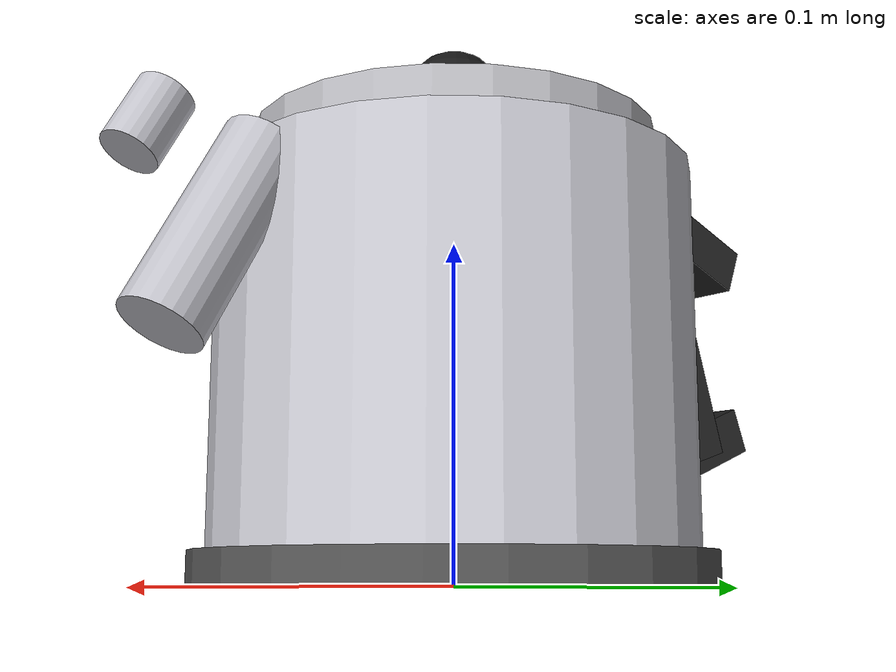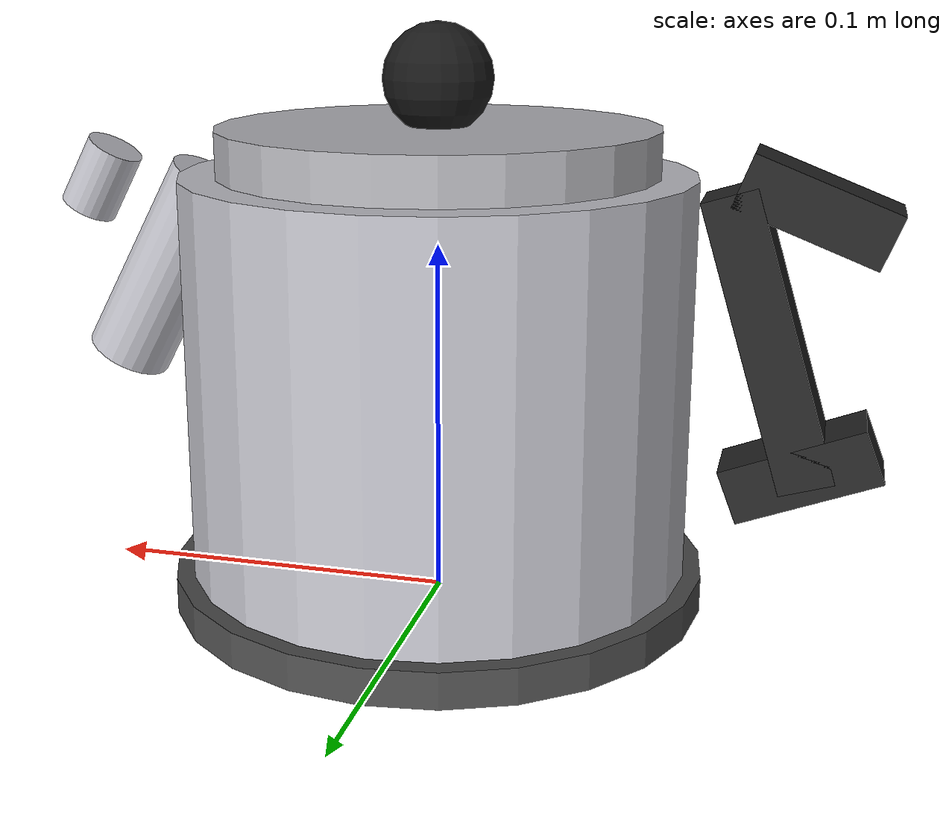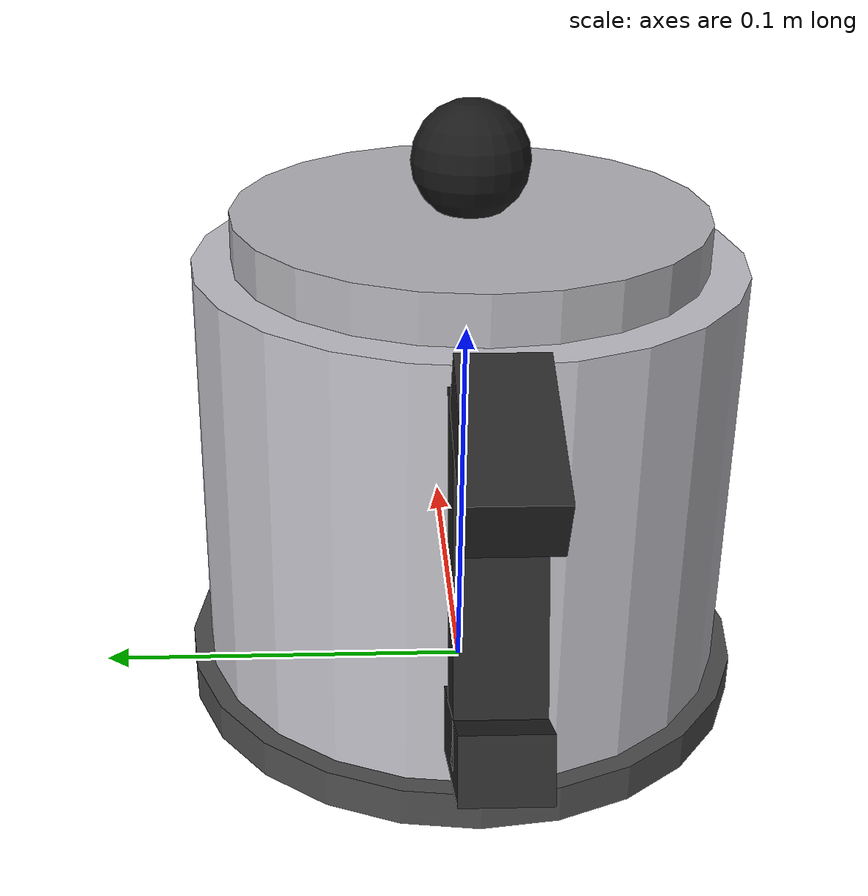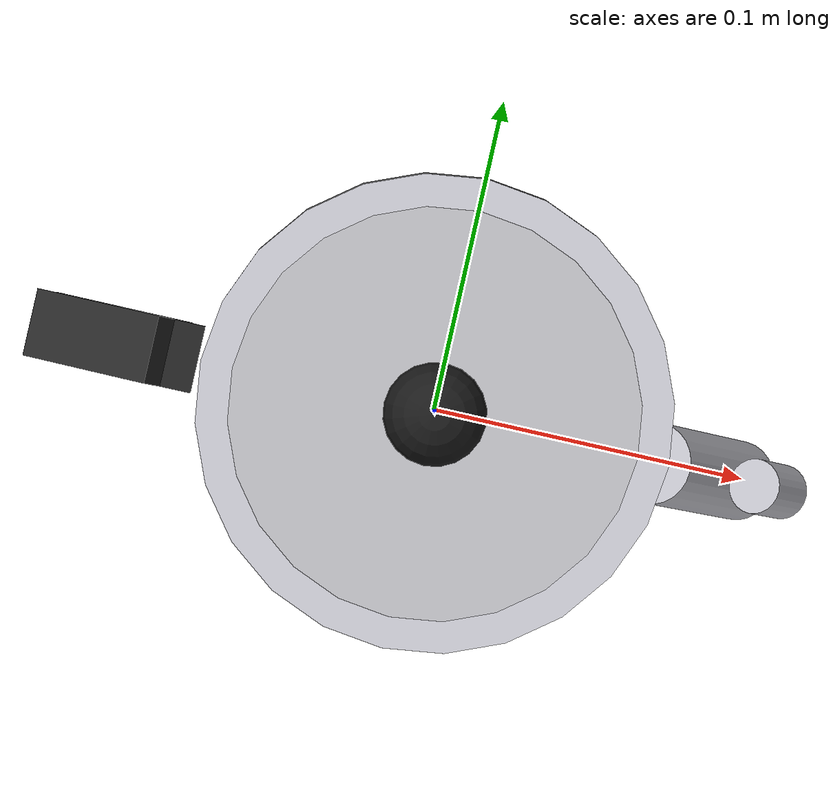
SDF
<?xml version="1.0" ?>
<sdf version="1.9">
  <model name="kettle">
    <static>false</static>

    <!-- Main kettle body -->
    <link name="body">
      <pose>0 0 0.06 0 0 0</pose>
      <inertial>
        <mass>0.5</mass>
        <pose>0 0 0 0 0 0</pose>
        <inertia>
          <ixx>0.002</ixx>
          <iyy>0.002</iyy>
          <izz>0.001</izz>
        </inertia>
      </inertial>

      <!-- Kettle body (main cylinder) -->
      <visual name="body_visual">
        <geometry>
          <cylinder>
            <radius>0.07</radius>
            <length>0.12</length>
          </cylinder>
        </geometry>
        <material>
          <ambient>0.75 0.75 0.78 1</ambient>
          <diffuse>0.75 0.75 0.78 1</diffuse>
          <specular>0.9 0.9 0.9 1</specular>
        </material>
      </visual>

      <!-- Kettle bottom (slightly wider) -->
      <visual name="bottom_visual">
        <pose>0 0 -0.055 0 0 0</pose>
        <geometry>
          <cylinder>
            <radius>0.075</radius>
            <length>0.01</length>
          </cylinder>
        </geometry>
        <material>
          <ambient>0.3 0.3 0.3 1</ambient>
          <diffuse>0.3 0.3 0.3 1</diffuse>
        </material>
      </visual>

      <!-- Lid -->
      <visual name="lid_visual">
        <pose>0 0 0.065 0 0 0</pose>
        <geometry>
          <cylinder>
            <radius>0.06</radius>
            <length>0.015</length>
          </cylinder>
        </geometry>
        <material>
          <ambient>0.7 0.7 0.72 1</ambient>
          <diffuse>0.7 0.7 0.72 1</diffuse>
        </material>
      </visual>

      <!-- Lid knob -->
      <visual name="knob_visual">
        <pose>0 0 0.085 0 0 0</pose>
        <geometry>
          <sphere>
            <radius>0.015</radius>
          </sphere>
        </geometry>
        <material>
          <ambient>0.1 0.1 0.1 1</ambient>
          <diffuse>0.1 0.1 0.1 1</diffuse>
        </material>
      </visual>

      <!-- Handle (approximated with boxes since tubes are complex) -->
      <!-- Handle vertical part -->
      <visual name="handle_vertical">
        <pose>-0.09 0 0.02 0 0.3 0</pose>
        <geometry>
          <box>
            <size>0.015 0.02 0.08</size>
          </box>
        </geometry>
        <material>
          <ambient>0.15 0.15 0.15 1</ambient>
          <diffuse>0.15 0.15 0.15 1</diffuse>
        </material>
      </visual>

      <!-- Handle top curve -->
      <visual name="handle_top">
        <pose>-0.1 0 0.055 0 1.2 0</pose>
        <geometry>
          <box>
            <size>0.015 0.02 0.04</size>
          </box>
        </geometry>
        <material>
          <ambient>0.15 0.15 0.15 1</ambient>
          <diffuse>0.15 0.15 0.15 1</diffuse>
        </material>
      </visual>

      <!-- Handle bottom curve -->
      <visual name="handle_bottom">
        <pose>-0.1 0 -0.015 0 -1.2 0</pose>
        <geometry>
          <box>
            <size>0.015 0.02 0.04</size>
          </box>
        </geometry>
        <material>
          <ambient>0.15 0.15 0.15 1</ambient>
          <diffuse>0.15 0.15 0.15 1</diffuse>
        </material>
      </visual>

      <!-- Spout -->
      <visual name="spout_visual">
        <pose>0.08 0 0.03 0 -0.5 0</pose>
        <geometry>
          <cylinder>
            <radius>0.012</radius>
            <length>0.06</length>
          </cylinder>
        </geometry>
        <material>
          <ambient>0.75 0.75 0.78 1</ambient>
          <diffuse>0.75 0.75 0.78 1</diffuse>
        </material>
      </visual>

      <!-- Spout tip -->
      <visual name="spout_tip">
        <pose>0.1 0 0.055 0 -0.5 0</pose>
        <geometry>
          <cylinder>
            <radius>0.008</radius>
            <length>0.02</length>
          </cylinder>
        </geometry>
        <material>
          <ambient>0.75 0.75 0.78 1</ambient>
          <diffuse>0.75 0.75 0.78 1</diffuse>
        </material>
      </visual>

      <!-- Collision geometry (simplified) -->
      <collision name="body_collision">
        <geometry>
          <cylinder>
            <radius>0.075</radius>
            <length>0.12</length>
          </cylinder>
        </geometry>
        <surface>
          <friction>
            <ode>
              <mu>0.8</mu>
              <mu2>0.8</mu2>
            </ode>
          </friction>
          <contact>
            <ode>
              <kp>1e6</kp>
              <kd>100</kd>
            </ode>
          </contact>
        </surface>
      </collision>

      <!-- Handle collision -->
      <collision name="handle_collision">
        <pose>-0.1 0 0.02 0 0 0</pose>
        <geometry>
          <box>
            <size>0.03 0.025 0.1</size>
          </box>
        </geometry>
      </collision>

      <!-- Contact sensor on bottom of kettle -->
      <sensor name="kettle_contact" type="contact">
        <always_on>true</always_on>
        <update_rate>50</update_rate>
        <contact>
          <collision>body_collision</collision>
        </contact>
        <topic>kettle/contact</topic>
      </sensor>

    </link>

    <!-- Frame for gripper attachment point (center of handle) -->
    <frame name="grip_point" attached_to="body">
      <pose>-0.1 0 0.02 0 0 0</pose>
    </frame>

  </model>
</sdf>
